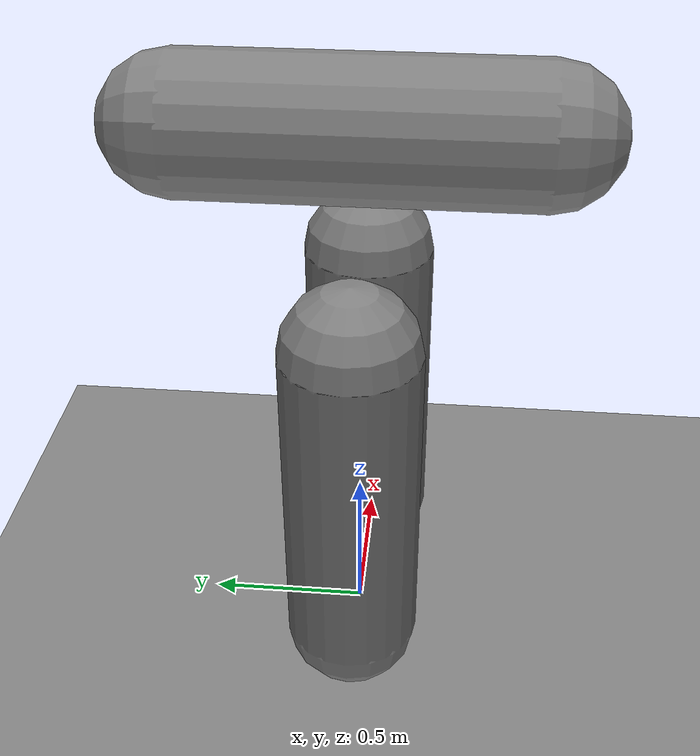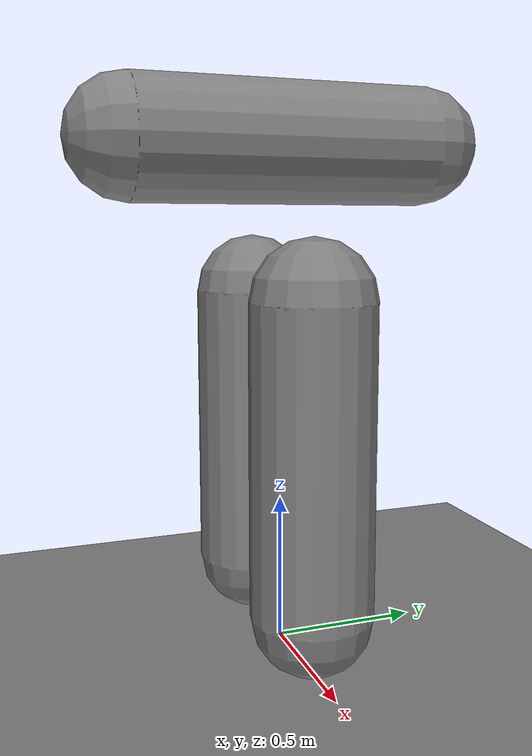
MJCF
<mujoco model="capsule_pile">
            <option gravity="0 0 -9.81" timestep="0.001"/>
            <worldbody>
                <geom name="floor" type="plane" size="5 5 0.1"/>
                <body name="cap1" pos="-0.3 0 0.7">
                    <joint type="free"/>
                    <geom type="capsule" size="0.2 0.5" mass="1"/>
                </body>
                <body name="cap2" pos="0.3 0 0.7">
                    <joint type="free"/>
                    <geom type="capsule" size="0.2 0.5" mass="1"/>
                </body>
                <body name="cap3" pos="0 0 1.7" euler="90 0 0">
                    <joint type="free"/>
                    <geom type="capsule" size="0.2 0.5" mass="1"/>
                </body>
            </worldbody>
        </mujoco>
